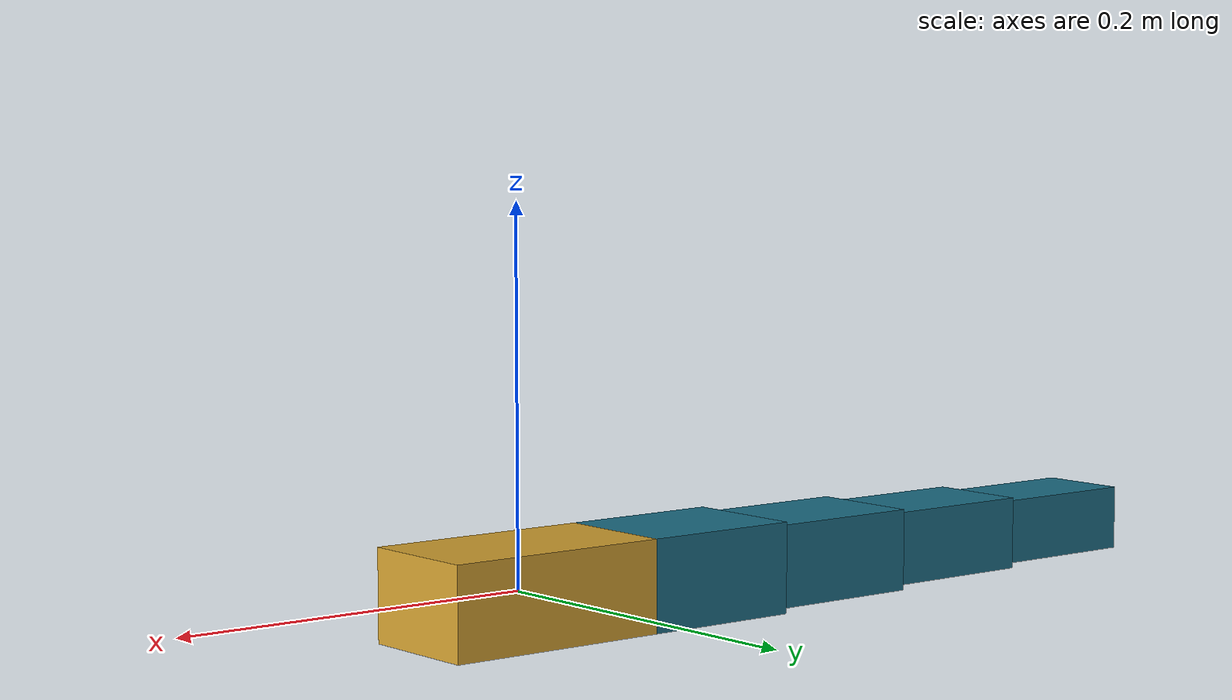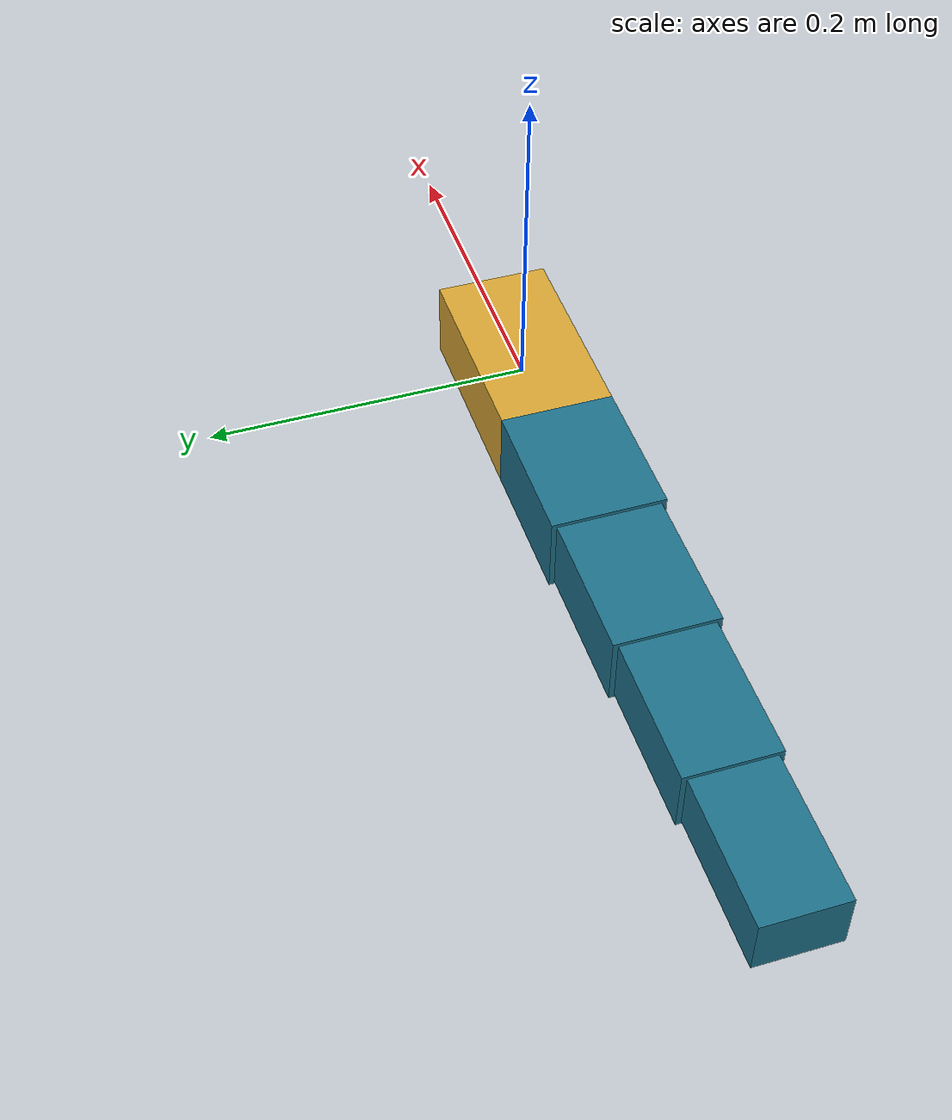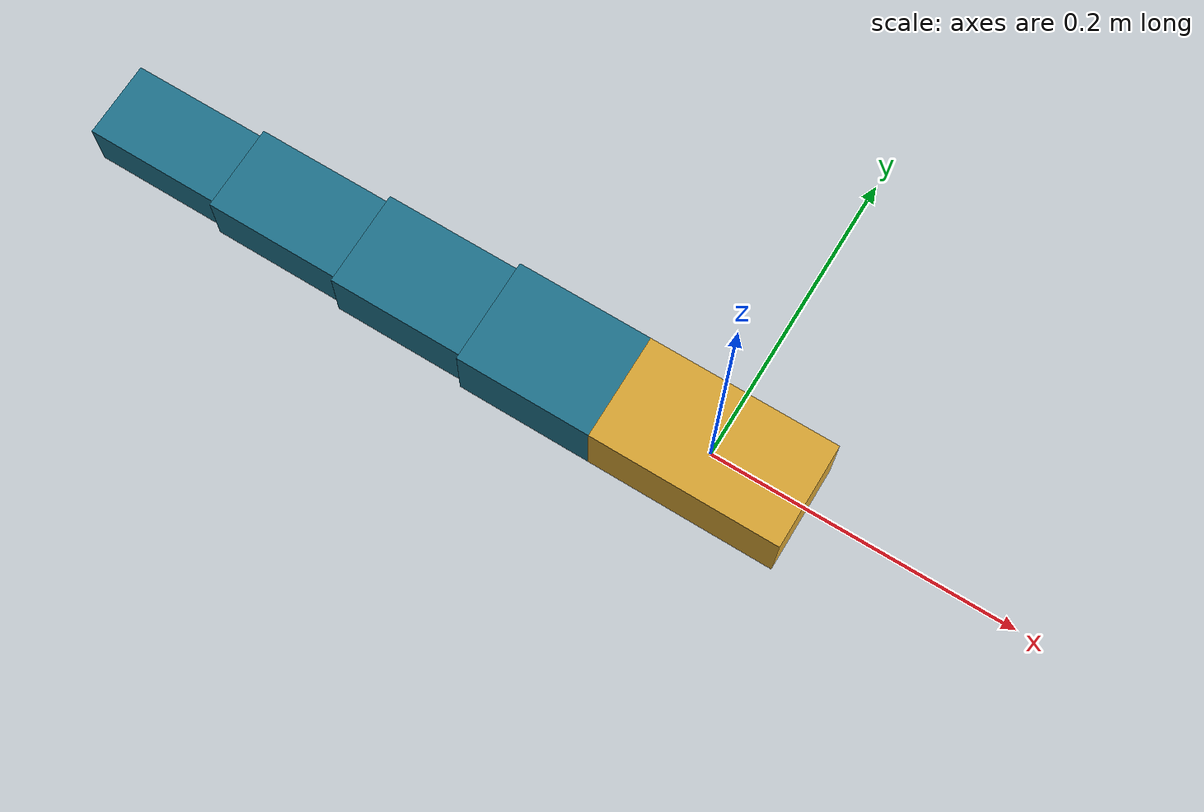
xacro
<?xml version="1.0"?>
<robot xmlns:xacro="http://www.ros.org/wiki/xacro" name="bur">

  <xacro:property name="n_joints" value="4"/>
  <xacro:property name="seg_len"  value="0.09"/>
  <xacro:property name="seg_w"    value="0.07"/>
  <xacro:property name="seg_h"    value="0.05"/>
  <xacro:property name="seg_mass" value="0.25"/>
  <xacro:property name="joint_limit" value="0.6"/>

  <material name="bur_blue">
    <color rgba="0.12 0.45 0.55 1.0"/>
  </material>
  <material name="bur_nose">
    <color rgba="0.85 0.65 0.20 1.0"/>
  </material>

  <xacro:macro name="box_inertial" params="mass x y z">
    <inertial>
      <mass value="${mass}"/>
      <inertia
        ixx="${mass*(y*y+z*z)/12.0}" ixy="0.0" ixz="0.0"
        iyy="${mass*(x*x+z*z)/12.0}" iyz="0.0"
        izz="${mass*(x*x+y*y)/12.0}"/>
    </inertial>
  </xacro:macro>

  <!-- Rigid nose section. The IMU belongs HERE, as far from the chain as
       possible, so undulation does not swamp it. See the TODO(fish) in
       bur_localization/params/ekf.yaml. -->
  <link name="base_link">
    <visual>
      <geometry><box size="${seg_len*1.4} ${seg_w} ${seg_h}"/></geometry>
      <material name="bur_nose"/>
    </visual>
    <collision>
      <geometry><box size="${seg_len*1.4} ${seg_w} ${seg_h}"/></geometry>
    </collision>
    <xacro:box_inertial mass="${seg_mass*1.5}"
                        x="${seg_len*1.4}" y="${seg_w}" z="${seg_h}"/>
  </link>

  <xacro:macro name="segment" params="idx parent offset">
    <xacro:property name="taper" value="${1.0 - 0.09*idx}"/>

    <joint name="joint_${idx}" type="revolute">
      <parent link="${parent}"/>
      <child  link="segment_${idx}"/>
      <origin xyz="${offset} 0 0" rpy="0 0 0"/>
      <axis xyz="0 0 1"/>
      <limit lower="${-joint_limit}" upper="${joint_limit}"
             effort="4.0" velocity="6.0"/>
    </joint>

    <link name="segment_${idx}">
      <visual>
        <origin xyz="${-seg_len/2} 0 0"/>
        <geometry>
          <box size="${seg_len} ${seg_w*taper} ${seg_h*taper}"/>
        </geometry>
        <material name="bur_blue"/>
      </visual>
      <collision>
        <origin xyz="${-seg_len/2} 0 0"/>
        <geometry>
          <box size="${seg_len} ${seg_w*taper} ${seg_h*taper}"/>
        </geometry>
      </collision>
      <xacro:box_inertial mass="${seg_mass*taper}"
                          x="${seg_len}" y="${seg_w*taper}" z="${seg_h*taper}"/>
    </link>
  </xacro:macro>

  <xacro:segment idx="0" parent="base_link" offset="${-seg_len*0.7}"/>
  <xacro:segment idx="1" parent="segment_0" offset="${-seg_len}"/>
  <xacro:segment idx="2" parent="segment_1" offset="${-seg_len}"/>
  <xacro:segment idx="3" parent="segment_2" offset="${-seg_len}"/>

  <!-- Sensor frames. Fixed, so they could equally live in ekf.launch.py -
       they are here so the whole body is described in one place. -->
  <link name="imu"/>
  <joint name="base_to_imu" type="fixed">
    <parent link="base_link"/>
    <child link="imu"/>
    <!-- TODO(hw): measure. The yaw flip is carried over from last year's
         mounting and is probably wrong for the new nose. -->
    <origin xyz="0.02 0 0" rpy="0 0 3.14159"/>
  </joint>

  <link name="depth_sensor"/>
  <joint name="base_to_depth" type="fixed">
    <parent link="base_link"/>
    <child link="depth_sensor"/>
    <origin xyz="-0.03 0 0.02" rpy="0 0 0"/>  <!-- TODO(hw): measure -->
  </joint>

  <link name="zed_camera_link"/>
  <joint name="base_to_zed" type="fixed">
    <parent link="base_link"/>
    <child link="zed_camera_link"/>
    <origin xyz="0.06 0 0.01" rpy="0 0 0"/>   <!-- TODO(hw): measure -->
  </joint>

</robot>
